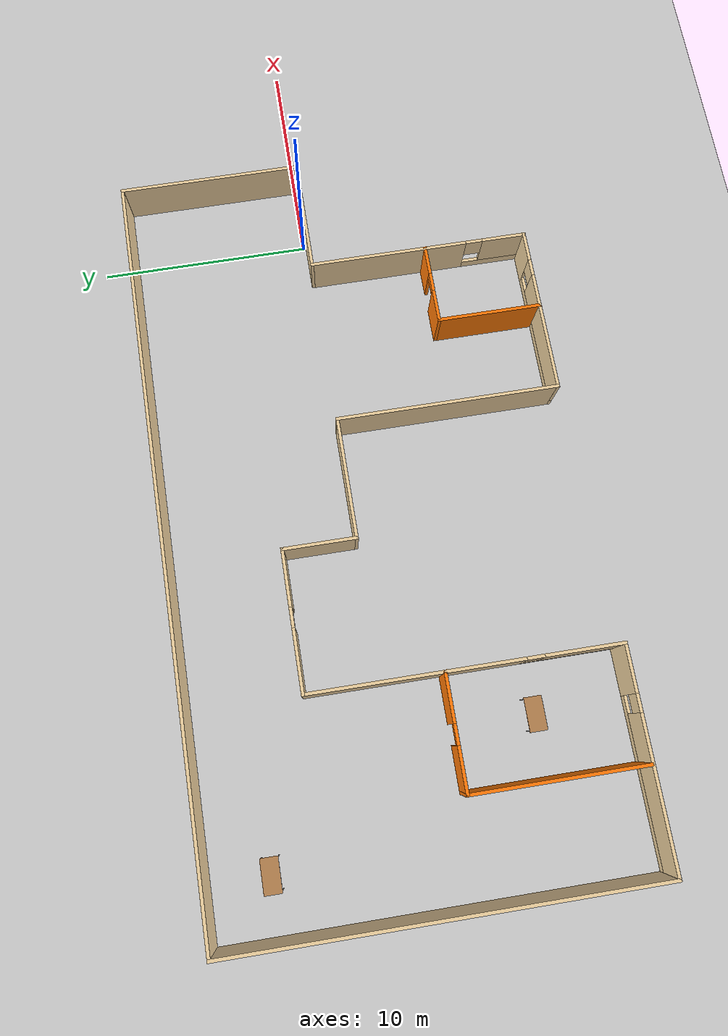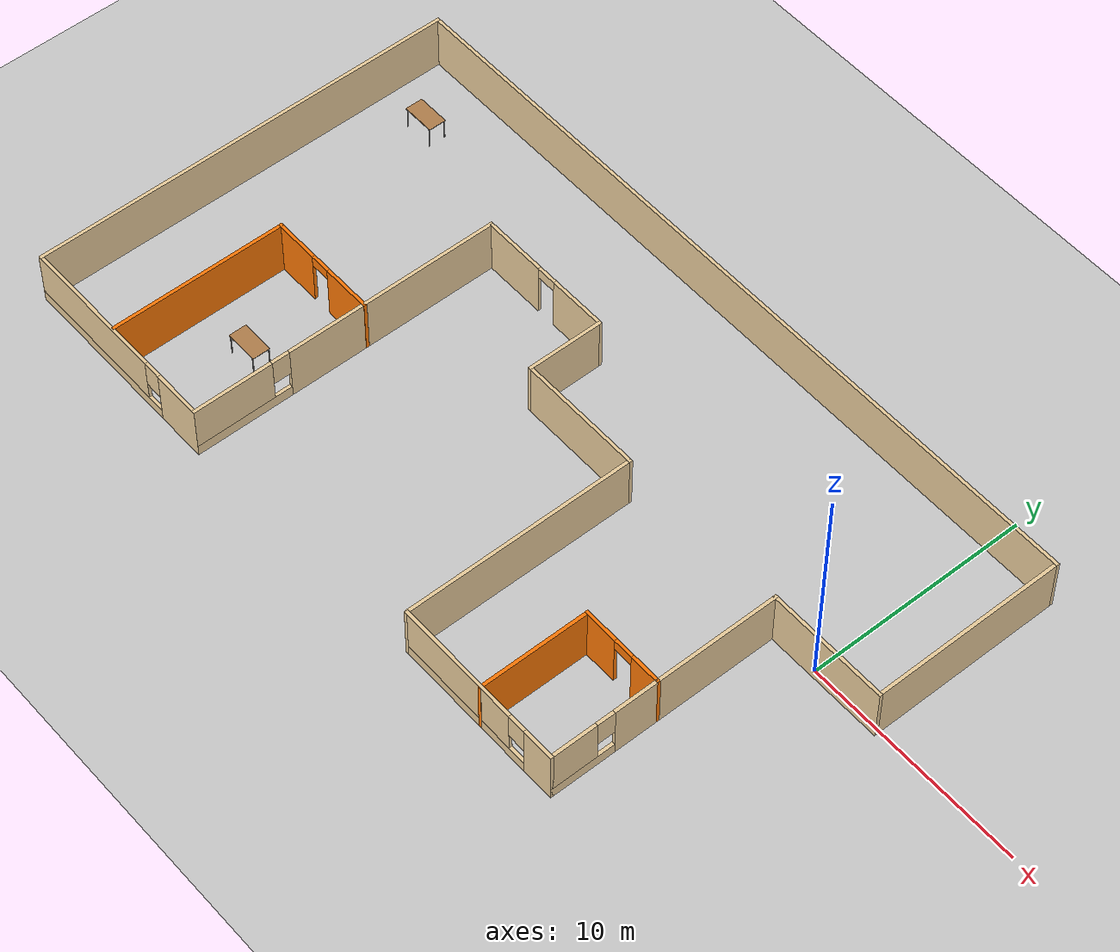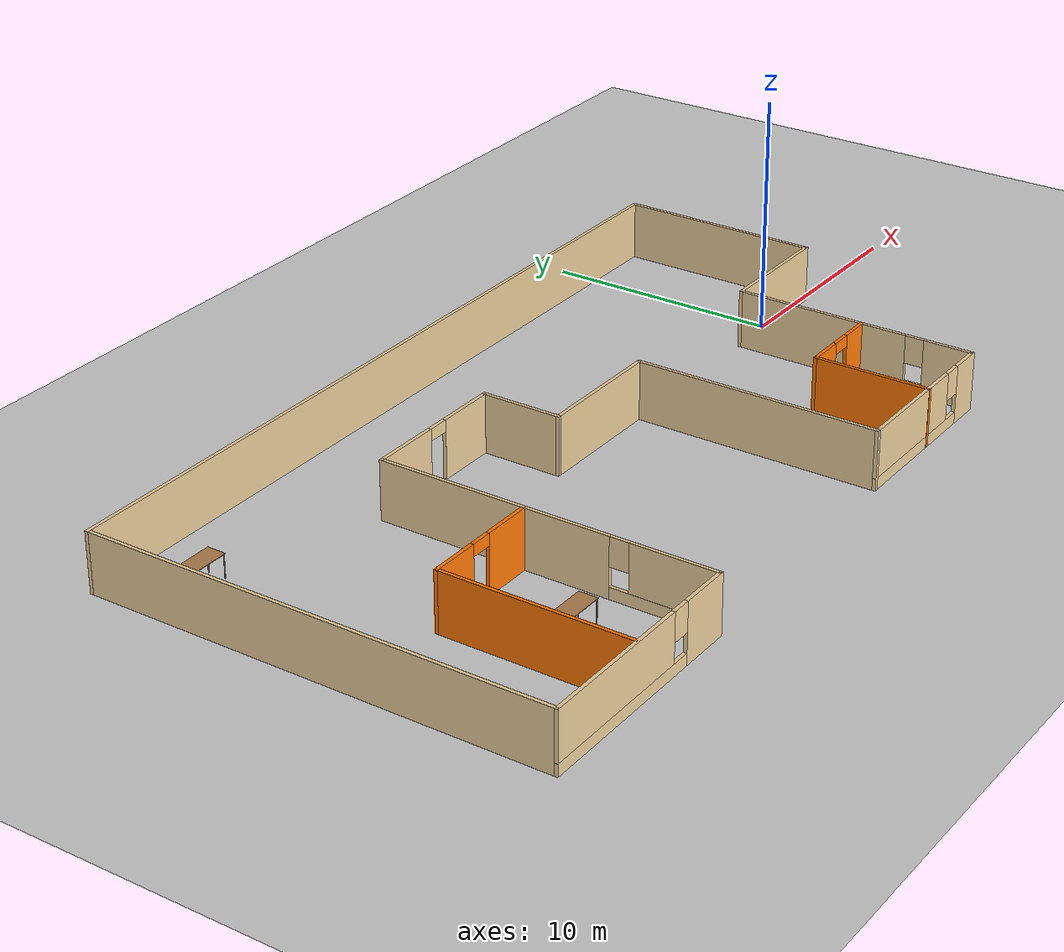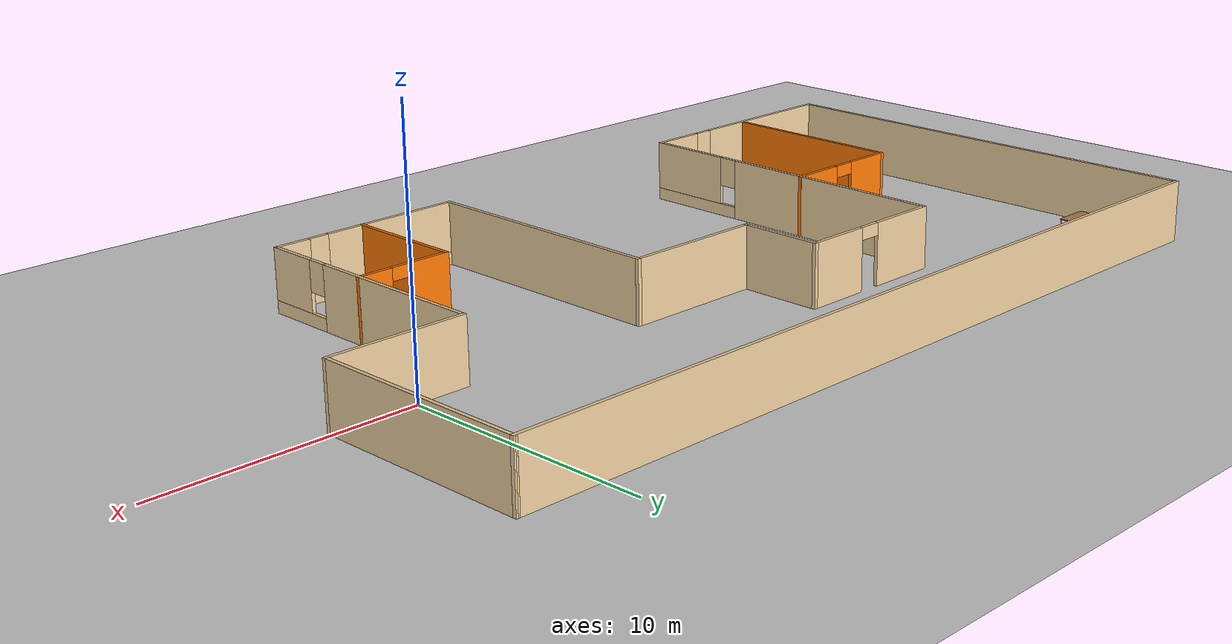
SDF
<sdf version="1.6">
 <world name="default">
  <model name="ground_plane">
   <static>1</static>
   <link name="link">
    <collision name="collision">
     <geometry><plane><normal>0 0 1</normal><size>100 100</size></plane></geometry>
     <surface><friction><ode><mu>100</mu><mu2>50</mu2></ode></friction></surface>
    </collision>
    <visual name="visual">
     <cast_shadows>0</cast_shadows>
     <geometry><plane><normal>0 0 1</normal><size>100 100</size></plane></geometry>
     <material>
      <script><uri>file://media/materials/scripts/gazebo.material</uri><name>Gazebo/Grey</name></script>
     </material>
    </visual>
   </link>
  </model>
  <model name="appartment">
   <pose>-14.1397 -1.23395 0 0 -0 0</pose>
   <link name="Wall_0">
    <collision name="Wall_0_Collision">
     <geometry><box><size>19.4596 0.15 2.5</size></box></geometry>
     <pose>0 0 1.25 0 -0 0</pose>
    </collision>
    <visual name="Wall_0_Visual">
     <pose>0 0 1.25 0 -0 0</pose>
     <geometry><box><size>19.4596 0.15 2.5</size></box></geometry>
     <material>
      <script><uri>file://media/materials/scripts/gazebo.material</uri><name>Gazebo/Grey</name></script>
      <ambient>0.921569 0.807843 0.615686 1</ambient>
     </material>
     <meta><layer>0</layer></meta>
    </visual>
    <pose>-17.4083 -0.020065 0 0 -0 1.5708</pose>
   </link>
   <link name="Wall_1">
    <collision name="Wall_1_Collision">
     <geometry><box><size>34.9669 0.15 2.5</size></box></geometry>
     <pose>0 0 1.25 0 -0 0</pose>
    </collision>
    <visual name="Wall_1_Visual">
     <pose>0 0 1.25 0 -0 0</pose>
     <geometry><box><size>34.9669 0.15 2.5</size></box></geometry>
     <material>
      <script><uri>file://media/materials/scripts/gazebo.material</uri><name>Gazebo/Grey</name></script>
      <ambient>0.921569 0.807843 0.615686 1</ambient>
     </material>
     <meta><layer>0</layer></meta>
    </visual>
    <pose>0 9.65496 0 0 -0 0.00115</pose>
   </link>
   <link name="Wall_10">
    <pose>-7.7415 -2.62504 0 0 0 -1.57076</pose>
    <visual name="Wall_10_Visual_0">
     <pose>-2.2093 0 1.25 0 -0 0</pose>
     <geometry><box><size>9.8314 0.15 2.5</size></box></geometry>
     <material>
      <script><uri>file://media/materials/scripts/gazebo.material</uri><name>Gazebo/Grey</name></script>
      <ambient>0.921569 0.807843 0.615686 1</ambient>
     </material>
     <meta><layer>0</layer></meta>
    </visual>
    <collision name="Wall_10_Collision_0">
     <geometry><box><size>9.8314 0.15 2.5</size></box></geometry>
     <pose>-2.2093 0 1.25 0 -0 0</pose>
    </collision>
    <visual name="Wall_10_Visual_1">
     <pose>4.9157 0 0.25 0 -0 0</pose>
     <geometry><box><size>4.4186 0.15 0.5</size></box></geometry>
     <material>
      <script><uri>file://media/materials/scripts/gazebo.material</uri><name>Gazebo/Grey</name></script>
      <ambient>0.921569 0.807843 0.615686 1</ambient>
     </material>
     <meta><layer>0</layer></meta>
    </visual>
    <collision name="Wall_10_Collision_1">
     <geometry><box><size>4.4186 0.15 0.5</size></box></geometry>
     <pose>4.9157 0 0.25 0 -0 0</pose>
    </collision>
    <visual name="Wall_10_Visual_2">
     <pose>5.3157 0 1.5 0 -0 0</pose>
     <geometry><box><size>3.6186 0.15 2</size></box></geometry>
     <material>
      <script><uri>file://media/materials/scripts/gazebo.material</uri><name>Gazebo/Grey</name></script>
      <ambient>0.921569 0.807843 0.615686 1</ambient>
     </material>
     <meta><layer>0</layer></meta>
    </visual>
    <collision name="Wall_10_Collision_2">
     <geometry><box><size>3.6186 0.15 2</size></box></geometry>
     <pose>5.3157 0 1.5 0 -0 0</pose>
    </collision>
    <visual name="Wall_10_Visual_3">
     <pose>3.1064 0 1.9 0 -0 0</pose>
     <geometry><box><size>0.8 0.15 1.2</size></box></geometry>
     <material>
      <script><uri>file://media/materials/scripts/gazebo.material</uri><name>Gazebo/Grey</name></script>
      <ambient>0.921569 0.807843 0.615686 1</ambient>
     </material>
     <meta><layer>0</layer></meta>
    </visual>
    <collision name="Wall_10_Collision_3">
     <geometry><box><size>0.8 0.15 1.2</size></box></geometry>
     <pose>3.1064 0 1.9 0 -0 0</pose>
    </collision>
   </link>
   <link name="Wall_11">
    <pose>-12.5748 -9.67507 0 0 -0 3.14159</pose>
    <visual name="Wall_11_Visual_0">
     <pose>-3.79039 0 1.25 0 -0 0</pose>
     <geometry><box><size>2.23622 0.15 2.5</size></box></geometry>
     <material>
      <script><uri>file://media/materials/scripts/gazebo.material</uri><name>Gazebo/Grey</name></script>
      <ambient>0.921569 0.807843 0.615686 1</ambient>
     </material>
     <meta><layer>0</layer></meta>
    </visual>
    <collision name="Wall_11_Collision_0">
     <geometry><box><size>2.23622 0.15 2.5</size></box></geometry>
     <pose>-3.79039 0 1.25 0 -0 0</pose>
    </collision>
    <visual name="Wall_11_Visual_1">
     <pose>1.11811 0 0.25 0 -0 0</pose>
     <geometry><box><size>7.58078 0.15 0.5</size></box></geometry>
     <material>
      <script><uri>file://media/materials/scripts/gazebo.material</uri><name>Gazebo/Grey</name></script>
      <ambient>0.921569 0.807843 0.615686 1</ambient>
     </material>
     <meta><layer>0</layer></meta>
    </visual>
    <collision name="Wall_11_Collision_1">
     <geometry><box><size>7.58078 0.15 0.5</size></box></geometry>
     <pose>1.11811 0 0.25 0 -0 0</pose>
    </collision>
    <visual name="Wall_11_Visual_2">
     <pose>1.51811 0 1.5 0 -0 0</pose>
     <geometry><box><size>6.78078 0.15 2</size></box></geometry>
     <material>
      <script><uri>file://media/materials/scripts/gazebo.material</uri><name>Gazebo/Grey</name></script>
      <ambient>0.921569 0.807843 0.615686 1</ambient>
     </material>
     <meta><layer>0</layer></meta>
    </visual>
    <collision name="Wall_11_Collision_2">
     <geometry><box><size>6.78078 0.15 2</size></box></geometry>
     <pose>1.51811 0 1.5 0 -0 0</pose>
    </collision>
    <visual name="Wall_11_Visual_3">
     <pose>-2.27228 0 1.9 0 -0 0</pose>
     <geometry><box><size>0.8 0.15 1.2</size></box></geometry>
     <material>
      <script><uri>file://media/materials/scripts/gazebo.material</uri><name>Gazebo/Grey</name></script>
      <ambient>0.921569 0.807843 0.615686 1</ambient>
     </material>
     <meta><layer>0</layer></meta>
    </visual>
    <collision name="Wall_11_Collision_3">
     <geometry><box><size>0.8 0.15 1.2</size></box></geometry>
     <pose>-2.27228 0 1.9 0 -0 0</pose>
    </collision>
   </link>
   <link name="Wall_13">
    <collision name="Wall_13_Collision">
     <geometry><box><size>5 0.15 2.5</size></box></geometry>
     <pose>0 0 1.25 0 -0 0</pose>
    </collision>
    <visual name="Wall_13_Visual">
     <pose>0 0 1.25 0 -0 0</pose>
     <geometry><box><size>5 0.15 2.5</size></box></geometry>
     <material>
      <script><uri>file://media/materials/scripts/gazebo.material</uri><name>Gazebo/Grey</name></script>
      <ambient>0.996078 0.47451 0.0196078 1</ambient>
     </material>
     <meta><layer>0</layer></meta>
    </visual>
    <pose>8.30689 -6.85928 0 0 -0 1.57087</pose>
   </link>
   <link name="Wall_14">
    <pose>10.1827 -4.43407 0 0 -0 0</pose>
    <visual name="Wall_14_Visual_0">
     <pose>-1.15332 0 1.25 0 -0 0</pose>
     <geometry><box><size>1.59536 0.15 2.5</size></box></geometry>
     <material>
      <script><uri>file://media/materials/scripts/gazebo.material</uri><name>Gazebo/Grey</name></script>
      <ambient>0.996078 0.47451 0.0196078 1</ambient>
     </material>
     <meta><layer>0</layer></meta>
    </visual>
    <collision name="Wall_14_Collision_0">
     <geometry><box><size>1.59536 0.15 2.5</size></box></geometry>
     <pose>-1.15332 0 1.25 0 -0 0</pose>
    </collision>
    <visual name="Wall_14_Visual_1">
     <pose>1.24768 0 1.25 0 -0 0</pose>
     <geometry><box><size>1.40664 0.15 2.5</size></box></geometry>
     <material>
      <script><uri>file://media/materials/scripts/gazebo.material</uri><name>Gazebo/Grey</name></script>
      <ambient>0.996078 0.47451 0.0196078 1</ambient>
     </material>
     <meta><layer>0</layer></meta>
    </visual>
    <collision name="Wall_14_Collision_1">
     <geometry><box><size>1.40664 0.15 2.5</size></box></geometry>
     <pose>1.24768 0 1.25 0 -0 0</pose>
    </collision>
    <visual name="Wall_14_Visual_2">
     <pose>0.094359 0 2.25 0 -0 0</pose>
     <geometry><box><size>0.9 0.15 0.5</size></box></geometry>
     <material>
      <script><uri>file://media/materials/scripts/gazebo.material</uri><name>Gazebo/Grey</name></script>
      <ambient>0.996078 0.47451 0.0196078 1</ambient>
     </material>
     <meta><layer>0</layer></meta>
    </visual>
    <collision name="Wall_14_Collision_2">
     <geometry><box><size>0.9 0.15 0.5</size></box></geometry>
     <pose>0.094359 0 2.25 0 -0 0</pose>
    </collision>
   </link>
   <link name="Wall_16">
    <pose>-10.2844 -1.75625 0 0 -0 3.14159</pose>
    <visual name="Wall_16_Visual_0">
     <pose>-1.4933 0 1.25 0 -0 0</pose>
     <geometry><box><size>2.26341 0.15 2.5</size></box></geometry>
     <material>
      <script><uri>file://media/materials/scripts/gazebo.material</uri><name>Gazebo/Grey</name></script>
      <ambient>0.996078 0.47451 0.0196078 1</ambient>
     </material>
     <meta><layer>0</layer></meta>
    </visual>
    <collision name="Wall_16_Collision_0">
     <geometry><box><size>2.26341 0.15 2.5</size></box></geometry>
     <pose>-1.4933 0 1.25 0 -0 0</pose>
    </collision>
    <visual name="Wall_16_Visual_1">
     <pose>1.5817 0 1.25 0 -0 0</pose>
     <geometry><box><size>2.08659 0.15 2.5</size></box></geometry>
     <material>
      <script><uri>file://media/materials/scripts/gazebo.material</uri><name>Gazebo/Grey</name></script>
      <ambient>0.996078 0.47451 0.0196078 1</ambient>
     </material>
     <meta><layer>0</layer></meta>
    </visual>
    <collision name="Wall_16_Collision_1">
     <geometry><box><size>2.08659 0.15 2.5</size></box></geometry>
     <pose>1.5817 0 1.25 0 -0 0</pose>
    </collision>
    <visual name="Wall_16_Visual_2">
     <pose>0.088408 0 2.25 0 -0 0</pose>
     <geometry><box><size>0.9 0.15 0.5</size></box></geometry>
     <material>
      <script><uri>file://media/materials/scripts/gazebo.material</uri><name>Gazebo/Grey</name></script>
      <ambient>0.996078 0.47451 0.0196078 1</ambient>
     </material>
     <meta><layer>0</layer></meta>
    </visual>
    <collision name="Wall_16_Collision_2">
     <geometry><box><size>0.9 0.15 0.5</size></box></geometry>
     <pose>0.088408 0 2.25 0 -0 0</pose>
    </collision>
   </link>
   <link name="Wall_17">
    <collision name="Wall_17_Collision">
     <geometry><box><size>8 0.15 2.5</size></box></geometry>
     <pose>0 0 1.25 0 -0 0</pose>
    </collision>
    <visual name="Wall_17_Visual">
     <pose>0 0 1.25 0 -0 0</pose>
     <geometry><box><size>8 0.15 2.5</size></box></geometry>
     <material>
      <script><uri>file://media/materials/scripts/gazebo.material</uri><name>Gazebo/Grey</name></script>
      <ambient>0.996078 0.47451 0.0196078 1</ambient>
     </material>
     <meta><layer>0</layer></meta>
    </visual>
    <pose>-12.8344 -5.68124 0 0 0 -1.5708</pose>
   </link>
   <link name="Wall_2">
    <collision name="Wall_2_Collision">
     <geometry><box><size>8.75 0.15 2.5</size></box></geometry>
     <pose>0 0 1.25 0 -0 0</pose>
    </collision>
    <visual name="Wall_2_Visual">
     <pose>0 0 1.25 0 -0 0</pose>
     <geometry><box><size>8.75 0.15 2.5</size></box></geometry>
     <material>
      <script><uri>file://media/materials/scripts/gazebo.material</uri><name>Gazebo/Grey</name></script>
      <ambient>0.921569 0.807843 0.615686 1</ambient>
     </material>
     <meta><layer>0</layer></meta>
    </visual>
    <pose>17.4083 5.37498 0 0 0 -1.5708</pose>
   </link>
   <link name="Wall_3">
    <collision name="Wall_3_Collision">
     <geometry><box><size>5.5 0.15 2.5</size></box></geometry>
     <pose>0 0 1.25 0 -0 0</pose>
    </collision>
    <visual name="Wall_3_Visual">
     <pose>0 0 1.25 0 -0 0</pose>
     <geometry><box><size>5.5 0.15 2.5</size></box></geometry>
     <material>
      <script><uri>file://media/materials/scripts/gazebo.material</uri><name>Gazebo/Grey</name></script>
      <ambient>0.921569 0.807843 0.615686 1</ambient>
     </material>
     <meta><layer>0</layer></meta>
    </visual>
    <pose>14.7333 1.07498 0 0 -0 3.14159</pose>
   </link>
   <link name="Wall_4">
    <pose>12.0583 -4.10002 0 0 0 -1.5708</pose>
    <visual name="Wall_4_Visual_0">
     <pose>-1.46402 0 1.25 0 -0 0</pose>
     <geometry><box><size>7.57196 0.15 2.5</size></box></geometry>
     <material>
      <script><uri>file://media/materials/scripts/gazebo.material</uri><name>Gazebo/Grey</name></script>
      <ambient>0.921569 0.807843 0.615686 1</ambient>
     </material>
     <meta><layer>0</layer></meta>
    </visual>
    <collision name="Wall_4_Collision_0">
     <geometry><box><size>7.57196 0.15 2.5</size></box></geometry>
     <pose>-1.46402 0 1.25 0 -0 0</pose>
    </collision>
    <visual name="Wall_4_Visual_1">
     <pose>3.78598 0 0.25 0 -0 0</pose>
     <geometry><box><size>2.92803 0.15 0.5</size></box></geometry>
     <material>
      <script><uri>file://media/materials/scripts/gazebo.material</uri><name>Gazebo/Grey</name></script>
      <ambient>0.921569 0.807843 0.615686 1</ambient>
     </material>
     <meta><layer>0</layer></meta>
    </visual>
    <collision name="Wall_4_Collision_1">
     <geometry><box><size>2.92803 0.15 0.5</size></box></geometry>
     <pose>3.78598 0 0.25 0 -0 0</pose>
    </collision>
    <visual name="Wall_4_Visual_2">
     <pose>4.18598 0 1.5 0 -0 0</pose>
     <geometry><box><size>2.12804 0.15 2</size></box></geometry>
     <material>
      <script><uri>file://media/materials/scripts/gazebo.material</uri><name>Gazebo/Grey</name></script>
      <ambient>0.921569 0.807843 0.615686 1</ambient>
     </material>
     <meta><layer>0</layer></meta>
    </visual>
    <collision name="Wall_4_Collision_2">
     <geometry><box><size>2.12804 0.15 2</size></box></geometry>
     <pose>4.18598 0 1.5 0 -0 0</pose>
    </collision>
    <visual name="Wall_4_Visual_3">
     <pose>2.72196 0 1.9 0 -0 0</pose>
     <geometry><box><size>0.8 0.15 1.2</size></box></geometry>
     <material>
      <script><uri>file://media/materials/scripts/gazebo.material</uri><name>Gazebo/Grey</name></script>
      <ambient>0.921569 0.807843 0.615686 1</ambient>
     </material>
     <meta><layer>0</layer></meta>
    </visual>
    <collision name="Wall_4_Collision_3">
     <geometry><box><size>0.8 0.15 1.2</size></box></geometry>
     <pose>2.72196 0 1.9 0 -0 0</pose>
    </collision>
   </link>
   <link name="Wall_5">
    <pose>8.13328 -9.27502 0 0 -0 3.14159</pose>
    <visual name="Wall_5_Visual_0">
     <pose>-3.2719 0 1.25 0 -0 0</pose>
     <geometry><box><size>1.4562 0.15 2.5</size></box></geometry>
     <material>
      <script><uri>file://media/materials/scripts/gazebo.material</uri><name>Gazebo/Grey</name></script>
      <ambient>0.921569 0.807843 0.615686 1</ambient>
     </material>
     <meta><layer>0</layer></meta>
    </visual>
    <collision name="Wall_5_Collision_0">
     <geometry><box><size>1.4562 0.15 2.5</size></box></geometry>
     <pose>-3.2719 0 1.25 0 -0 0</pose>
    </collision>
    <visual name="Wall_5_Visual_1">
     <pose>0.728102 0 0.25 0 -0 0</pose>
     <geometry><box><size>6.5438 0.15 0.5</size></box></geometry>
     <material>
      <script><uri>file://media/materials/scripts/gazebo.material</uri><name>Gazebo/Grey</name></script>
      <ambient>0.921569 0.807843 0.615686 1</ambient>
     </material>
     <meta><layer>0</layer></meta>
    </visual>
    <collision name="Wall_5_Collision_1">
     <geometry><box><size>6.5438 0.15 0.5</size></box></geometry>
     <pose>0.728102 0 0.25 0 -0 0</pose>
    </collision>
    <visual name="Wall_5_Visual_2">
     <pose>1.1281 0 1.5 0 -0 0</pose>
     <geometry><box><size>5.7438 0.15 2</size></box></geometry>
     <material>
      <script><uri>file://media/materials/scripts/gazebo.material</uri><name>Gazebo/Grey</name></script>
      <ambient>0.921569 0.807843 0.615686 1</ambient>
     </material>
     <meta><layer>0</layer></meta>
    </visual>
    <collision name="Wall_5_Collision_2">
     <geometry><box><size>5.7438 0.15 2</size></box></geometry>
     <pose>1.1281 0 1.5 0 -0 0</pose>
    </collision>
    <visual name="Wall_5_Visual_3">
     <pose>-2.14379 0 1.9 0 -0 0</pose>
     <geometry><box><size>0.8 0.15 1.2</size></box></geometry>
     <material>
      <script><uri>file://media/materials/scripts/gazebo.material</uri><name>Gazebo/Grey</name></script>
      <ambient>0.921569 0.807843 0.615686 1</ambient>
     </material>
     <meta><layer>0</layer></meta>
    </visual>
    <collision name="Wall_5_Collision_3">
     <geometry><box><size>0.8 0.15 1.2</size></box></geometry>
     <pose>-2.14379 0 1.9 0 -0 0</pose>
    </collision>
   </link>
   <link name="Wall_6">
    <collision name="Wall_6_Collision">
     <geometry><box><size>10.5 0.15 2.5</size></box></geometry>
     <pose>0 0 1.25 0 -0 0</pose>
    </collision>
    <visual name="Wall_6_Visual">
     <pose>0 0 1.25 0 -0 0</pose>
     <geometry><box><size>10.5 0.15 2.5</size></box></geometry>
     <material>
      <script><uri>file://media/materials/scripts/gazebo.material</uri><name>Gazebo/Grey</name></script>
      <ambient>0.921569 0.807843 0.615686 1</ambient>
     </material>
     <meta><layer>0</layer></meta>
    </visual>
    <pose>4.20828 -4.10002 0 0 -0 1.5708</pose>
   </link>
   <link name="Wall_7">
    <collision name="Wall_7_Collision">
     <geometry><box><size>5.75 0.15 2.5</size></box></geometry>
     <pose>0 0 1.25 0 -0 0</pose>
    </collision>
    <visual name="Wall_7_Visual">
     <pose>0 0 1.25 0 -0 0</pose>
     <geometry><box><size>5.75 0.15 2.5</size></box></geometry>
     <material>
      <script><uri>file://media/materials/scripts/gazebo.material</uri><name>Gazebo/Grey</name></script>
      <ambient>0.921569 0.807843 0.615686 1</ambient>
     </material>
     <meta><layer>0</layer></meta>
    </visual>
    <pose>1.40828 1.07498 0 0 -0 3.14159</pose>
   </link>
   <link name="Wall_8">
    <collision name="Wall_8_Collision">
     <geometry><box><size>3.5 0.15 2.5</size></box></geometry>
     <pose>0 0 1.25 0 -0 0</pose>
    </collision>
    <visual name="Wall_8_Visual">
     <pose>0 0 1.25 0 -0 0</pose>
     <geometry><box><size>3.5 0.15 2.5</size></box></geometry>
     <material>
      <script><uri>file://media/materials/scripts/gazebo.material</uri><name>Gazebo/Grey</name></script>
      <ambient>0.921569 0.807843 0.615686 1</ambient>
     </material>
     <meta><layer>0</layer></meta>
    </visual>
    <pose>-1.39172 2.74998 0 0 -0 1.5708</pose>
   </link>
   <link name="Wall_9">
    <pose>-4.56672 4.42498 0 0 -0 3.14159</pose>
    <visual name="Wall_9_Visual_0">
     <pose>-1.91954 0 1.25 0 -0 0</pose>
     <geometry><box><size>2.66093 0.15 2.5</size></box></geometry>
     <material>
      <script><uri>file://media/materials/scripts/gazebo.material</uri><name>Gazebo/Grey</name></script>
      <ambient>0.921569 0.807843 0.615686 1</ambient>
     </material>
     <meta><layer>0</layer></meta>
    </visual>
    <collision name="Wall_9_Collision_0">
     <geometry><box><size>2.66093 0.15 2.5</size></box></geometry>
     <pose>-1.91954 0 1.25 0 -0 0</pose>
    </collision>
    <visual name="Wall_9_Visual_1">
     <pose>1.78046 0 1.25 0 -0 0</pose>
     <geometry><box><size>2.93907 0.15 2.5</size></box></geometry>
     <material>
      <script><uri>file://media/materials/scripts/gazebo.material</uri><name>Gazebo/Grey</name></script>
      <ambient>0.921569 0.807843 0.615686 1</ambient>
     </material>
     <meta><layer>0</layer></meta>
    </visual>
    <collision name="Wall_9_Collision_1">
     <geometry><box><size>2.93907 0.15 2.5</size></box></geometry>
     <pose>1.78046 0 1.25 0 -0 0</pose>
    </collision>
    <visual name="Wall_9_Visual_2">
     <pose>-0.139072 0 2.25 0 -0 0</pose>
     <geometry><box><size>0.9 0.15 0.5</size></box></geometry>
     <material>
      <script><uri>file://media/materials/scripts/gazebo.material</uri><name>Gazebo/Grey</name></script>
      <ambient>0.921569 0.807843 0.615686 1</ambient>
     </material>
     <meta><layer>0</layer></meta>
    </visual>
    <collision name="Wall_9_Collision_2">
     <geometry><box><size>0.9 0.15 0.5</size></box></geometry>
     <pose>-0.139072 0 2.25 0 -0 0</pose>
    </collision>
   </link>
   <static>1</static>
  </model>
  <model name="table_0">
   <static>1</static>
   <link name="link">
    <collision name="surface">
     <pose>0 0 1 0 -0 0</pose>
     <geometry><box><size>1.5 0.8 0.03</size></box></geometry>
     <surface><friction><ode><mu>0.6</mu><mu2>0.6</mu2></ode></friction></surface>
    </collision>
    <visual name="visual1">
     <pose>0 0 1 0 -0 0</pose>
     <geometry><box><size>1.5 0.8 0.03</size></box></geometry>
     <material>
      <script><uri>file://media/materials/scripts/gazebo.material</uri><name>Gazebo/Wood</name></script>
     </material>
    </visual>
    <collision name="front_left_leg">
     <pose>0.68 0.38 0.5 0 -0 0</pose>
     <geometry><cylinder><radius>0.02</radius><length>1</length></cylinder></geometry>
    </collision>
    <visual name="front_left_leg">
     <pose>0.68 0.38 0.5 0 -0 0</pose>
     <geometry><cylinder><radius>0.02</radius><length>1</length></cylinder></geometry>
     <material>
      <script><uri>file://media/materials/scripts/gazebo.material</uri><name>Gazebo/Grey</name></script>
     </material>
    </visual>
    <collision name="front_right_leg">
     <pose>0.68 -0.38 0.5 0 -0 0</pose>
     <geometry><cylinder><radius>0.02</radius><length>1</length></cylinder></geometry>
    </collision>
    <visual name="front_right_leg">
     <pose>0.68 -0.38 0.5 0 -0 0</pose>
     <geometry><cylinder><radius>0.02</radius><length>1</length></cylinder></geometry>
     <material>
      <script><uri>file://media/materials/scripts/gazebo.material</uri><name>Gazebo/Grey</name></script>
     </material>
    </visual>
    <collision name="back_right_leg">
     <pose>-0.68 -0.38 0.5 0 -0 0</pose>
     <geometry><cylinder><radius>0.02</radius><length>1</length></cylinder></geometry>
    </collision>
    <visual name="back_right_leg">
     <pose>-0.68 -0.38 0.5 0 -0 0</pose>
     <geometry><cylinder><radius>0.02</radius><length>1</length></cylinder></geometry>
     <material>
      <script><uri>file://media/materials/scripts/gazebo.material</uri><name>Gazebo/Grey</name></script>
     </material>
    </visual>
    <collision name="back_left_leg">
     <pose>-0.68 0.38 0.5 0 -0 0</pose>
     <geometry><cylinder><radius>0.02</radius><length>1</length></cylinder></geometry>
    </collision>
    <visual name="back_left_leg">
     <pose>-0.68 0.38 0.5 0 -0 0</pose>
     <geometry><cylinder><radius>0.02</radius><length>1</length></cylinder></geometry>
     <material>
      <script><uri>file://media/materials/scripts/gazebo.material</uri><name>Gazebo/Grey</name></script>
     </material>
    </visual>
   </link>
   <pose>-24.2031 -6.72388 0 0 -0 0</pose>
  </model>
  <model name="table_1">
   <static>1</static>
   <link name="link">
    <collision name="surface">
     <pose>0 0 1 0 -0 0</pose>
     <geometry><box><size>1.5 0.8 0.03</size></box></geometry>
     <surface><friction><ode><mu>0.6</mu><mu2>0.6</mu2></ode></friction></surface>
    </collision>
    <visual name="visual1">
     <pose>0 0 1 0 -0 0</pose>
     <geometry><box><size>1.5 0.8 0.03</size></box></geometry>
     <material>
      <script><uri>file://media/materials/scripts/gazebo.material</uri><name>Gazebo/Wood</name></script>
     </material>
    </visual>
    <collision name="front_left_leg">
     <pose>0.68 0.38 0.5 0 -0 0</pose>
     <geometry><cylinder><radius>0.02</radius><length>1</length></cylinder></geometry>
    </collision>
    <visual name="front_left_leg">
     <pose>0.68 0.38 0.5 0 -0 0</pose>
     <geometry><cylinder><radius>0.02</radius><length>1</length></cylinder></geometry>
     <material>
      <script><uri>file://media/materials/scripts/gazebo.material</uri><name>Gazebo/Grey</name></script>
     </material>
    </visual>
    <collision name="front_right_leg">
     <pose>0.68 -0.38 0.5 0 -0 0</pose>
     <geometry><cylinder><radius>0.02</radius><length>1</length></cylinder></geometry>
    </collision>
    <visual name="front_right_leg">
     <pose>0.68 -0.38 0.5 0 -0 0</pose>
     <geometry><cylinder><radius>0.02</radius><length>1</length></cylinder></geometry>
     <material>
      <script><uri>file://media/materials/scripts/gazebo.material</uri><name>Gazebo/Grey</name></script>
     </material>
    </visual>
    <collision name="back_right_leg">
     <pose>-0.68 -0.38 0.5 0 -0 0</pose>
     <geometry><cylinder><radius>0.02</radius><length>1</length></cylinder></geometry>
    </collision>
    <visual name="back_right_leg">
     <pose>-0.68 -0.38 0.5 0 -0 0</pose>
     <geometry><cylinder><radius>0.02</radius><length>1</length></cylinder></geometry>
     <material>
      <script><uri>file://media/materials/scripts/gazebo.material</uri><name>Gazebo/Grey</name></script>
     </material>
    </visual>
    <collision name="back_left_leg">
     <pose>-0.68 0.38 0.5 0 -0 0</pose>
     <geometry><cylinder><radius>0.02</radius><length>1</length></cylinder></geometry>
    </collision>
    <visual name="back_left_leg">
     <pose>-0.68 0.38 0.5 0 -0 0</pose>
     <geometry><cylinder><radius>0.02</radius><length>1</length></cylinder></geometry>
     <material>
      <script><uri>file://media/materials/scripts/gazebo.material</uri><name>Gazebo/Grey</name></script>
     </material>
    </visual>
   </link>
   <pose>-28.951 5.63383 0 0 -0 0</pose>
  </model>
 </world>
</sdf>
